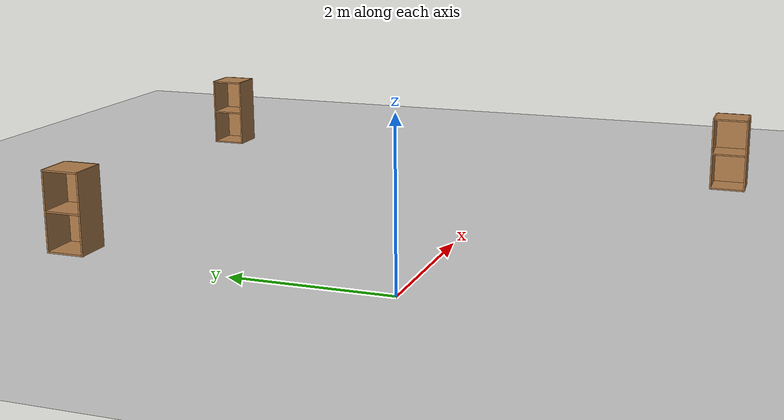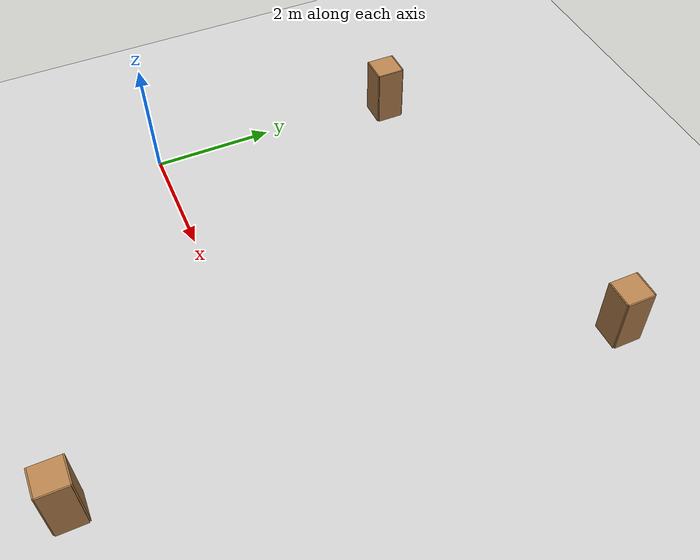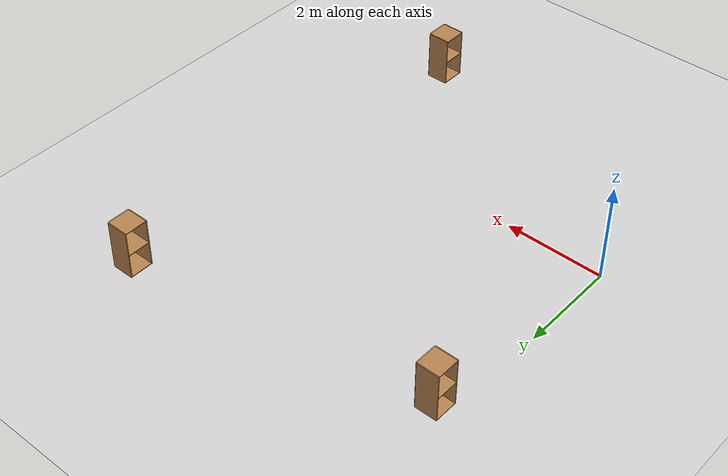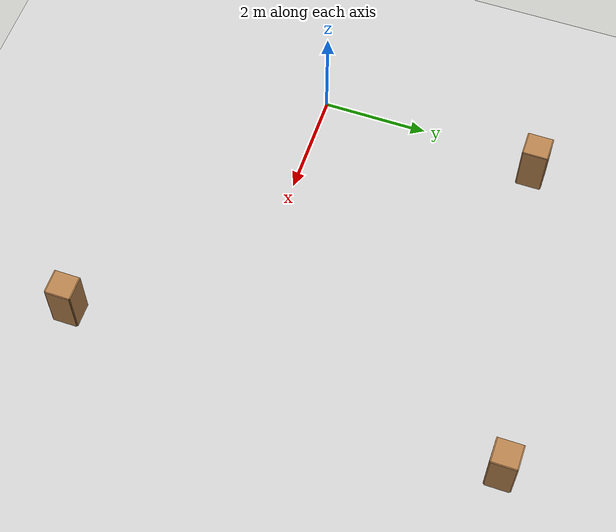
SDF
<sdf version="1.7">
 <world name="default">
  <model name="ground_plane">
   <static>1</static>
   <link name="link">
    <collision name="collision">
     <geometry><plane><normal>0 0 1</normal><size>100 100</size></plane></geometry>
     <surface>
      <contact><collide_bitmask>65535</collide_bitmask></contact>
      <friction><ode><mu>100</mu><mu2>50</mu2></ode></friction>
     </surface>
    </collision>
    <visual name="visual">
     <cast_shadows>0</cast_shadows>
     <geometry><plane><normal>0 0 1</normal><size>100 100</size></plane></geometry>
     <material>
      <script><uri>file://media/materials/scripts/gazebo.material</uri><name>Gazebo/Grey</name></script>
     </material>
    </visual>
   </link>
  </model>
  <model name="cabinet_wood">
   <link name="cabinet_bottom_plate">
    <inertial>
     <pose>0 0 -1 0 -0 0</pose>
     <inertia><ixx>2.05</ixx><ixy>0</ixy><ixz>0</ixz><iyy>2.05</iyy><iyz>0</iyz><izz>2.05</izz></inertia>
     <mass>25</mass>
    </inertial>
    <velocity_decay><linear>0</linear><angular>0</angular></velocity_decay>
    <visual name="cabinet_bottom_plate_geom_cabinet_back_plate_visual">
     <pose>0.235 0 0.51 0 -0 0</pose>
     <geometry><box><size>0.02 0.45 1.02</size></box></geometry>
     <material>
      <script><uri>file://media/materials/scripts/gazebo.material</uri><name>Gazebo/Wood</name></script>
      <shader type="pixel"/>
     </material>
    </visual>
    <visual name="cabinet_bottom_plate_geom_visual">
     <pose>0 0 0.01 0 -0 0</pose>
     <geometry><box><size>0.45 0.45 0.02</size></box></geometry>
     <material>
      <script><uri>file://media/materials/scripts/gazebo.material</uri><name>Gazebo/Wood</name></script>
      <shader type="pixel"/>
     </material>
    </visual>
    <visual name="cabinet_bottom_plate_geom_cabinet_left_plate_visual">
     <pose>0 0.235 0.51 0 -0 0</pose>
     <geometry><box><size>0.45 0.02 1.02</size></box></geometry>
     <material>
      <script><uri>file://media/materials/scripts/gazebo.material</uri><name>Gazebo/Wood</name></script>
      <shader type="pixel"/>
     </material>
    </visual>
    <visual name="cabinet_bottom_plate_geom_cabinet_middle_plate_visual">
     <pose>0 0 0.51 0 -0 0</pose>
     <geometry><box><size>0.45 0.45 0.02</size></box></geometry>
     <material>
      <script><uri>file://media/materials/scripts/gazebo.material</uri><name>Gazebo/Wood</name></script>
      <shader type="pixel"/>
     </material>
    </visual>
    <visual name="cabinet_bottom_plate_geom_cabinet_right_plate_visual">
     <pose>0 -0.235 0.51 0 -0 0</pose>
     <geometry><box><size>0.45 0.02 1.02</size></box></geometry>
     <material>
      <script><uri>file://media/materials/scripts/gazebo.material</uri><name>Gazebo/Wood</name></script>
      <shader type="pixel"/>
     </material>
    </visual>
    <visual name="cabinet_bottom_plate_geom_cabinet_top_plate_visual">
     <pose>0 0 1.01 0 -0 0</pose>
     <geometry><box><size>0.45 0.45 0.02</size></box></geometry>
     <material>
      <script><uri>file://media/materials/scripts/gazebo.material</uri><name>Gazebo/Wood</name></script>
      <shader type="pixel"/>
     </material>
    </visual>
    <collision name="cabinet_bottom_plate_geom">
     <pose>0 0 0.01 0 -0 0</pose>
     <geometry><box><size>0.45 0.45 0.02</size></box></geometry>
     <surface>
      <friction>
       <ode><mu>1</mu><mu2>1</mu2><fdir1>0 0 0</fdir1><slip1>0</slip1><slip2>0</slip2></ode>
       <torsional>
        <coefficient>1</coefficient>
        <patch_radius>0</patch_radius>
        <surface_radius>0</surface_radius>
        <use_patch_radius>1</use_patch_radius>
        <ode><slip>0</slip></ode>
       </torsional>
      </friction>
      <bounce><restitution_coefficient>0</restitution_coefficient><threshold>1e+06</threshold></bounce>
      <contact>
       <collide_without_contact>0</collide_without_contact>
       <collide_without_contact_bitmask>1</collide_without_contact_bitmask>
       <collide_bitmask>1</collide_bitmask>
       <ode>
        <soft_cfm>0</soft_cfm>
        <soft_erp>0.2</soft_erp>
        <kp>1e+13</kp>
        <kd>1</kd>
        <max_vel>0.01</max_vel>
        <min_depth>0</min_depth>
       </ode>
       <bullet>
        <split_impulse>1</split_impulse>
        <split_impulse_penetration_threshold>-0.01</split_impulse_penetration_threshold>
        <soft_cfm>0</soft_cfm>
        <soft_erp>0.2</soft_erp>
        <kp>1e+13</kp>
        <kd>1</kd>
       </bullet>
      </contact>
     </surface>
    </collision>
    <collision name="cabinet_bottom_plate_geom_cabinet_back_plate">
     <pose>0.235 0 0.51 0 -0 0</pose>
     <geometry><box><size>0.02 0.45 1.02</size></box></geometry>
     <surface>
      <friction>
       <ode><mu>1</mu><mu2>1</mu2><fdir1>0 0 0</fdir1><slip1>0</slip1><slip2>0</slip2></ode>
       <torsional>
        <coefficient>1</coefficient>
        <patch_radius>0</patch_radius>
        <surface_radius>0</surface_radius>
        <use_patch_radius>1</use_patch_radius>
        <ode><slip>0</slip></ode>
       </torsional>
      </friction>
      <bounce><restitution_coefficient>0</restitution_coefficient><threshold>1e+06</threshold></bounce>
      <contact>
       <collide_without_contact>0</collide_without_contact>
       <collide_without_contact_bitmask>1</collide_without_contact_bitmask>
       <collide_bitmask>1</collide_bitmask>
       <ode>
        <soft_cfm>0</soft_cfm>
        <soft_erp>0.2</soft_erp>
        <kp>1e+13</kp>
        <kd>1</kd>
        <max_vel>0.01</max_vel>
        <min_depth>0</min_depth>
       </ode>
       <bullet>
        <split_impulse>1</split_impulse>
        <split_impulse_penetration_threshold>-0.01</split_impulse_penetration_threshold>
        <soft_cfm>0</soft_cfm>
        <soft_erp>0.2</soft_erp>
        <kp>1e+13</kp>
        <kd>1</kd>
       </bullet>
      </contact>
     </surface>
    </collision>
    <collision name="cabinet_bottom_plate_geom_cabinet_left_plate">
     <pose>0 0.235 0.51 0 -0 0</pose>
     <geometry><box><size>0.45 0.02 1.02</size></box></geometry>
     <surface>
      <friction>
       <ode><mu>1</mu><mu2>1</mu2><fdir1>0 0 0</fdir1><slip1>0</slip1><slip2>0</slip2></ode>
       <torsional>
        <coefficient>1</coefficient>
        <patch_radius>0</patch_radius>
        <surface_radius>0</surface_radius>
        <use_patch_radius>1</use_patch_radius>
        <ode><slip>0</slip></ode>
       </torsional>
      </friction>
      <bounce><restitution_coefficient>0</restitution_coefficient><threshold>1e+06</threshold></bounce>
      <contact>
       <collide_without_contact>0</collide_without_contact>
       <collide_without_contact_bitmask>1</collide_without_contact_bitmask>
       <collide_bitmask>1</collide_bitmask>
       <ode>
        <soft_cfm>0</soft_cfm>
        <soft_erp>0.2</soft_erp>
        <kp>1e+13</kp>
        <kd>1</kd>
        <max_vel>0.01</max_vel>
        <min_depth>0</min_depth>
       </ode>
       <bullet>
        <split_impulse>1</split_impulse>
        <split_impulse_penetration_threshold>-0.01</split_impulse_penetration_threshold>
        <soft_cfm>0</soft_cfm>
        <soft_erp>0.2</soft_erp>
        <kp>1e+13</kp>
        <kd>1</kd>
       </bullet>
      </contact>
     </surface>
    </collision>
    <collision name="cabinet_bottom_plate_geom_cabinet_right_plate">
     <pose>0 -0.235 0.51 0 -0 0</pose>
     <geometry><box><size>0.45 0.02 1.02</size></box></geometry>
     <surface>
      <friction>
       <ode><mu>1</mu><mu2>1</mu2><fdir1>0 0 0</fdir1><slip1>0</slip1><slip2>0</slip2></ode>
       <torsional>
        <coefficient>1</coefficient>
        <patch_radius>0</patch_radius>
        <surface_radius>0</surface_radius>
        <use_patch_radius>1</use_patch_radius>
        <ode><slip>0</slip></ode>
       </torsional>
      </friction>
      <bounce><restitution_coefficient>0</restitution_coefficient><threshold>1e+06</threshold></bounce>
      <contact>
       <collide_without_contact>0</collide_without_contact>
       <collide_without_contact_bitmask>1</collide_without_contact_bitmask>
       <collide_bitmask>1</collide_bitmask>
       <ode>
        <soft_cfm>0</soft_cfm>
        <soft_erp>0.2</soft_erp>
        <kp>1e+13</kp>
        <kd>1</kd>
        <max_vel>0.01</max_vel>
        <min_depth>0</min_depth>
       </ode>
       <bullet>
        <split_impulse>1</split_impulse>
        <split_impulse_penetration_threshold>-0.01</split_impulse_penetration_threshold>
        <soft_cfm>0</soft_cfm>
        <soft_erp>0.2</soft_erp>
        <kp>1e+13</kp>
        <kd>1</kd>
       </bullet>
      </contact>
     </surface>
    </collision>
    <collision name="cabinet_bottom_plate_geom_cabinet_middle_plate">
     <pose>0 0 0.51 0 -0 0</pose>
     <geometry><box><size>0.45 0.45 0.02</size></box></geometry>
     <surface>
      <friction>
       <ode><mu>1</mu><mu2>1</mu2><fdir1>0 0 0</fdir1><slip1>0</slip1><slip2>0</slip2></ode>
       <torsional>
        <coefficient>1</coefficient>
        <patch_radius>0</patch_radius>
        <surface_radius>0</surface_radius>
        <use_patch_radius>1</use_patch_radius>
        <ode><slip>0</slip></ode>
       </torsional>
      </friction>
      <bounce><restitution_coefficient>0</restitution_coefficient><threshold>1e+06</threshold></bounce>
      <contact>
       <collide_without_contact>0</collide_without_contact>
       <collide_without_contact_bitmask>1</collide_without_contact_bitmask>
       <collide_bitmask>1</collide_bitmask>
       <ode>
        <soft_cfm>0</soft_cfm>
        <soft_erp>0.2</soft_erp>
        <kp>1e+13</kp>
        <kd>1</kd>
        <max_vel>0.01</max_vel>
        <min_depth>0</min_depth>
       </ode>
       <bullet>
        <split_impulse>1</split_impulse>
        <split_impulse_penetration_threshold>-0.01</split_impulse_penetration_threshold>
        <soft_cfm>0</soft_cfm>
        <soft_erp>0.2</soft_erp>
        <kp>1e+13</kp>
        <kd>1</kd>
       </bullet>
      </contact>
     </surface>
    </collision>
    <collision name="cabinet_bottom_plate_geom_cabinet_top_plate">
     <pose>0 0 1.01 0 -0 0</pose>
     <geometry><box><size>0.45 0.45 0.02</size></box></geometry>
     <surface>
      <friction>
       <ode><mu>1</mu><mu2>1</mu2><fdir1>0 0 0</fdir1><slip1>0</slip1><slip2>0</slip2></ode>
       <torsional>
        <coefficient>1</coefficient>
        <patch_radius>0</patch_radius>
        <surface_radius>0</surface_radius>
        <use_patch_radius>1</use_patch_radius>
        <ode><slip>0</slip></ode>
       </torsional>
      </friction>
      <bounce><restitution_coefficient>0</restitution_coefficient><threshold>1e+06</threshold></bounce>
      <contact>
       <collide_without_contact>0</collide_without_contact>
       <collide_without_contact_bitmask>1</collide_without_contact_bitmask>
       <collide_bitmask>1</collide_bitmask>
       <ode>
        <soft_cfm>0</soft_cfm>
        <soft_erp>0.2</soft_erp>
        <kp>1e+13</kp>
        <kd>1</kd>
        <max_vel>0.01</max_vel>
        <min_depth>0</min_depth>
       </ode>
       <bullet>
        <split_impulse>1</split_impulse>
        <split_impulse_penetration_threshold>-0.01</split_impulse_penetration_threshold>
        <soft_cfm>0</soft_cfm>
        <soft_erp>0.2</soft_erp>
        <kp>1e+13</kp>
        <kd>1</kd>
       </bullet>
      </contact>
     </surface>
    </collision>
   </link>
   <static>1</static>
   <pose>0.331644 4.20647 0 0 -0 0</pose>
  </model>
  <model name="cabinet_wood_2">
   <link name="cabinet_bottom_plate">
    <inertial>
     <pose>0 0 -1 0 -0 0</pose>
     <inertia><ixx>2.05</ixx><ixy>0</ixy><ixz>0</ixz><iyy>2.05</iyy><iyz>0</iyz><izz>2.05</izz></inertia>
     <mass>25</mass>
    </inertial>
    <velocity_decay><linear>0</linear><angular>0</angular></velocity_decay>
    <visual name="cabinet_bottom_plate_geom_cabinet_back_plate_visual">
     <pose>0.235 0 0.51 0 -0 0</pose>
     <geometry><box><size>0.02 0.45 1.02</size></box></geometry>
     <material>
      <script><uri>file://media/materials/scripts/gazebo.material</uri><name>Gazebo/Wood</name></script>
      <shader type="pixel"/>
     </material>
    </visual>
    <visual name="cabinet_bottom_plate_geom_visual">
     <pose>0 0 0.01 0 -0 0</pose>
     <geometry><box><size>0.45 0.45 0.02</size></box></geometry>
     <material>
      <script><uri>file://media/materials/scripts/gazebo.material</uri><name>Gazebo/Wood</name></script>
      <shader type="pixel"/>
     </material>
    </visual>
    <visual name="cabinet_bottom_plate_geom_cabinet_left_plate_visual">
     <pose>0 0.235 0.51 0 -0 0</pose>
     <geometry><box><size>0.45 0.02 1.02</size></box></geometry>
     <material>
      <script><uri>file://media/materials/scripts/gazebo.material</uri><name>Gazebo/Wood</name></script>
      <shader type="pixel"/>
     </material>
    </visual>
    <visual name="cabinet_bottom_plate_geom_cabinet_middle_plate_visual">
     <pose>0 0 0.51 0 -0 0</pose>
     <geometry><box><size>0.45 0.45 0.02</size></box></geometry>
     <material>
      <script><uri>file://media/materials/scripts/gazebo.material</uri><name>Gazebo/Wood</name></script>
      <shader type="pixel"/>
     </material>
    </visual>
    <visual name="cabinet_bottom_plate_geom_cabinet_right_plate_visual">
     <pose>0 -0.235 0.51 0 -0 0</pose>
     <geometry><box><size>0.45 0.02 1.02</size></box></geometry>
     <material>
      <script><uri>file://media/materials/scripts/gazebo.material</uri><name>Gazebo/Wood</name></script>
      <shader type="pixel"/>
     </material>
    </visual>
    <visual name="cabinet_bottom_plate_geom_cabinet_top_plate_visual">
     <pose>0 0 1.01 0 -0 0</pose>
     <geometry><box><size>0.45 0.45 0.02</size></box></geometry>
     <material>
      <script><uri>file://media/materials/scripts/gazebo.material</uri><name>Gazebo/Wood</name></script>
      <shader type="pixel"/>
     </material>
    </visual>
    <collision name="cabinet_bottom_plate_geom">
     <pose>0 0 0.01 0 -0 0</pose>
     <geometry><box><size>0.45 0.45 0.02</size></box></geometry>
     <surface>
      <friction>
       <ode><mu>1</mu><mu2>1</mu2><fdir1>0 0 0</fdir1><slip1>0</slip1><slip2>0</slip2></ode>
       <torsional>
        <coefficient>1</coefficient>
        <patch_radius>0</patch_radius>
        <surface_radius>0</surface_radius>
        <use_patch_radius>1</use_patch_radius>
        <ode><slip>0</slip></ode>
       </torsional>
      </friction>
      <bounce><restitution_coefficient>0</restitution_coefficient><threshold>1e+06</threshold></bounce>
      <contact>
       <collide_without_contact>0</collide_without_contact>
       <collide_without_contact_bitmask>1</collide_without_contact_bitmask>
       <collide_bitmask>1</collide_bitmask>
       <ode>
        <soft_cfm>0</soft_cfm>
        <soft_erp>0.2</soft_erp>
        <kp>1e+13</kp>
        <kd>1</kd>
        <max_vel>0.01</max_vel>
        <min_depth>0</min_depth>
       </ode>
       <bullet>
        <split_impulse>1</split_impulse>
        <split_impulse_penetration_threshold>-0.01</split_impulse_penetration_threshold>
        <soft_cfm>0</soft_cfm>
        <soft_erp>0.2</soft_erp>
        <kp>1e+13</kp>
        <kd>1</kd>
       </bullet>
      </contact>
     </surface>
    </collision>
    <collision name="cabinet_bottom_plate_geom_cabinet_back_plate">
     <pose>0.235 0 0.51 0 -0 0</pose>
     <geometry><box><size>0.02 0.45 1.02</size></box></geometry>
     <surface>
      <friction>
       <ode><mu>1</mu><mu2>1</mu2><fdir1>0 0 0</fdir1><slip1>0</slip1><slip2>0</slip2></ode>
       <torsional>
        <coefficient>1</coefficient>
        <patch_radius>0</patch_radius>
        <surface_radius>0</surface_radius>
        <use_patch_radius>1</use_patch_radius>
        <ode><slip>0</slip></ode>
       </torsional>
      </friction>
      <bounce><restitution_coefficient>0</restitution_coefficient><threshold>1e+06</threshold></bounce>
      <contact>
       <collide_without_contact>0</collide_without_contact>
       <collide_without_contact_bitmask>1</collide_without_contact_bitmask>
       <collide_bitmask>1</collide_bitmask>
       <ode>
        <soft_cfm>0</soft_cfm>
        <soft_erp>0.2</soft_erp>
        <kp>1e+13</kp>
        <kd>1</kd>
        <max_vel>0.01</max_vel>
        <min_depth>0</min_depth>
       </ode>
       <bullet>
        <split_impulse>1</split_impulse>
        <split_impulse_penetration_threshold>-0.01</split_impulse_penetration_threshold>
        <soft_cfm>0</soft_cfm>
        <soft_erp>0.2</soft_erp>
        <kp>1e+13</kp>
        <kd>1</kd>
       </bullet>
      </contact>
     </surface>
    </collision>
    <collision name="cabinet_bottom_plate_geom_cabinet_left_plate">
     <pose>0 0.235 0.51 0 -0 0</pose>
     <geometry><box><size>0.45 0.02 1.02</size></box></geometry>
     <surface>
      <friction>
       <ode><mu>1</mu><mu2>1</mu2><fdir1>0 0 0</fdir1><slip1>0</slip1><slip2>0</slip2></ode>
       <torsional>
        <coefficient>1</coefficient>
        <patch_radius>0</patch_radius>
        <surface_radius>0</surface_radius>
        <use_patch_radius>1</use_patch_radius>
        <ode><slip>0</slip></ode>
       </torsional>
      </friction>
      <bounce><restitution_coefficient>0</restitution_coefficient><threshold>1e+06</threshold></bounce>
      <contact>
       <collide_without_contact>0</collide_without_contact>
       <collide_without_contact_bitmask>1</collide_without_contact_bitmask>
       <collide_bitmask>1</collide_bitmask>
       <ode>
        <soft_cfm>0</soft_cfm>
        <soft_erp>0.2</soft_erp>
        <kp>1e+13</kp>
        <kd>1</kd>
        <max_vel>0.01</max_vel>
        <min_depth>0</min_depth>
       </ode>
       <bullet>
        <split_impulse>1</split_impulse>
        <split_impulse_penetration_threshold>-0.01</split_impulse_penetration_threshold>
        <soft_cfm>0</soft_cfm>
        <soft_erp>0.2</soft_erp>
        <kp>1e+13</kp>
        <kd>1</kd>
       </bullet>
      </contact>
     </surface>
    </collision>
    <collision name="cabinet_bottom_plate_geom_cabinet_right_plate">
     <pose>0 -0.235 0.51 0 -0 0</pose>
     <geometry><box><size>0.45 0.02 1.02</size></box></geometry>
     <surface>
      <friction>
       <ode><mu>1</mu><mu2>1</mu2><fdir1>0 0 0</fdir1><slip1>0</slip1><slip2>0</slip2></ode>
       <torsional>
        <coefficient>1</coefficient>
        <patch_radius>0</patch_radius>
        <surface_radius>0</surface_radius>
        <use_patch_radius>1</use_patch_radius>
        <ode><slip>0</slip></ode>
       </torsional>
      </friction>
      <bounce><restitution_coefficient>0</restitution_coefficient><threshold>1e+06</threshold></bounce>
      <contact>
       <collide_without_contact>0</collide_without_contact>
       <collide_without_contact_bitmask>1</collide_without_contact_bitmask>
       <collide_bitmask>1</collide_bitmask>
       <ode>
        <soft_cfm>0</soft_cfm>
        <soft_erp>0.2</soft_erp>
        <kp>1e+13</kp>
        <kd>1</kd>
        <max_vel>0.01</max_vel>
        <min_depth>0</min_depth>
       </ode>
       <bullet>
        <split_impulse>1</split_impulse>
        <split_impulse_penetration_threshold>-0.01</split_impulse_penetration_threshold>
        <soft_cfm>0</soft_cfm>
        <soft_erp>0.2</soft_erp>
        <kp>1e+13</kp>
        <kd>1</kd>
       </bullet>
      </contact>
     </surface>
    </collision>
    <collision name="cabinet_bottom_plate_geom_cabinet_middle_plate">
     <pose>0 0 0.51 0 -0 0</pose>
     <geometry><box><size>0.45 0.45 0.02</size></box></geometry>
     <surface>
      <friction>
       <ode><mu>1</mu><mu2>1</mu2><fdir1>0 0 0</fdir1><slip1>0</slip1><slip2>0</slip2></ode>
       <torsional>
        <coefficient>1</coefficient>
        <patch_radius>0</patch_radius>
        <surface_radius>0</surface_radius>
        <use_patch_radius>1</use_patch_radius>
        <ode><slip>0</slip></ode>
       </torsional>
      </friction>
      <bounce><restitution_coefficient>0</restitution_coefficient><threshold>1e+06</threshold></bounce>
      <contact>
       <collide_without_contact>0</collide_without_contact>
       <collide_without_contact_bitmask>1</collide_without_contact_bitmask>
       <collide_bitmask>1</collide_bitmask>
       <ode>
        <soft_cfm>0</soft_cfm>
        <soft_erp>0.2</soft_erp>
        <kp>1e+13</kp>
        <kd>1</kd>
        <max_vel>0.01</max_vel>
        <min_depth>0</min_depth>
       </ode>
       <bullet>
        <split_impulse>1</split_impulse>
        <split_impulse_penetration_threshold>-0.01</split_impulse_penetration_threshold>
        <soft_cfm>0</soft_cfm>
        <soft_erp>0.2</soft_erp>
        <kp>1e+13</kp>
        <kd>1</kd>
       </bullet>
      </contact>
     </surface>
    </collision>
    <collision name="cabinet_bottom_plate_geom_cabinet_top_plate">
     <pose>0 0 1.01 0 -0 0</pose>
     <geometry><box><size>0.45 0.45 0.02</size></box></geometry>
     <surface>
      <friction>
       <ode><mu>1</mu><mu2>1</mu2><fdir1>0 0 0</fdir1><slip1>0</slip1><slip2>0</slip2></ode>
       <torsional>
        <coefficient>1</coefficient>
        <patch_radius>0</patch_radius>
        <surface_radius>0</surface_radius>
        <use_patch_radius>1</use_patch_radius>
        <ode><slip>0</slip></ode>
       </torsional>
      </friction>
      <bounce><restitution_coefficient>0</restitution_coefficient><threshold>1e+06</threshold></bounce>
      <contact>
       <collide_without_contact>0</collide_without_contact>
       <collide_without_contact_bitmask>1</collide_without_contact_bitmask>
       <collide_bitmask>1</collide_bitmask>
       <ode>
        <soft_cfm>0</soft_cfm>
        <soft_erp>0.2</soft_erp>
        <kp>1e+13</kp>
        <kd>1</kd>
        <max_vel>0.01</max_vel>
        <min_depth>0</min_depth>
       </ode>
       <bullet>
        <split_impulse>1</split_impulse>
        <split_impulse_penetration_threshold>-0.01</split_impulse_penetration_threshold>
        <soft_cfm>0</soft_cfm>
        <soft_erp>0.2</soft_erp>
        <kp>1e+13</kp>
        <kd>1</kd>
       </bullet>
      </contact>
     </surface>
    </collision>
   </link>
   <static>1</static>
   <pose>6.36011 5.21581 0 0 -0 0</pose>
  </model>
  <model name="cabinet_wood_3">
   <link name="cabinet_bottom_plate">
    <inertial>
     <pose>0 0 -1 0 -0 0</pose>
     <inertia><ixx>2.05</ixx><ixy>0</ixy><ixz>0</ixz><iyy>2.05</iyy><iyz>0</iyz><izz>2.05</izz></inertia>
     <mass>25</mass>
    </inertial>
    <velocity_decay><linear>0</linear><angular>0</angular></velocity_decay>
    <visual name="cabinet_bottom_plate_geom_cabinet_back_plate_visual">
     <pose>0.235 0 0.51 0 -0 0</pose>
     <geometry><box><size>0.02 0.45 1.02</size></box></geometry>
     <material>
      <script><uri>file://media/materials/scripts/gazebo.material</uri><name>Gazebo/Wood</name></script>
      <shader type="pixel"/>
     </material>
    </visual>
    <visual name="cabinet_bottom_plate_geom_visual">
     <pose>0 0 0.01 0 -0 0</pose>
     <geometry><box><size>0.45 0.45 0.02</size></box></geometry>
     <material>
      <script><uri>file://media/materials/scripts/gazebo.material</uri><name>Gazebo/Wood</name></script>
      <shader type="pixel"/>
     </material>
    </visual>
    <visual name="cabinet_bottom_plate_geom_cabinet_left_plate_visual">
     <pose>0 0.235 0.51 0 -0 0</pose>
     <geometry><box><size>0.45 0.02 1.02</size></box></geometry>
     <material>
      <script><uri>file://media/materials/scripts/gazebo.material</uri><name>Gazebo/Wood</name></script>
      <shader type="pixel"/>
     </material>
    </visual>
    <visual name="cabinet_bottom_plate_geom_cabinet_middle_plate_visual">
     <pose>0 0 0.51 0 -0 0</pose>
     <geometry><box><size>0.45 0.45 0.02</size></box></geometry>
     <material>
      <script><uri>file://media/materials/scripts/gazebo.material</uri><name>Gazebo/Wood</name></script>
      <shader type="pixel"/>
     </material>
    </visual>
    <visual name="cabinet_bottom_plate_geom_cabinet_right_plate_visual">
     <pose>0 -0.235 0.51 0 -0 0</pose>
     <geometry><box><size>0.45 0.02 1.02</size></box></geometry>
     <material>
      <script><uri>file://media/materials/scripts/gazebo.material</uri><name>Gazebo/Wood</name></script>
      <shader type="pixel"/>
     </material>
    </visual>
    <visual name="cabinet_bottom_plate_geom_cabinet_top_plate_visual">
     <pose>0 0 1.01 0 -0 0</pose>
     <geometry><box><size>0.45 0.45 0.02</size></box></geometry>
     <material>
      <script><uri>file://media/materials/scripts/gazebo.material</uri><name>Gazebo/Wood</name></script>
      <shader type="pixel"/>
     </material>
    </visual>
    <collision name="cabinet_bottom_plate_geom">
     <pose>0 0 0.01 0 -0 0</pose>
     <geometry><box><size>0.45 0.45 0.02</size></box></geometry>
     <surface>
      <friction>
       <ode><mu>1</mu><mu2>1</mu2><fdir1>0 0 0</fdir1><slip1>0</slip1><slip2>0</slip2></ode>
       <torsional>
        <coefficient>1</coefficient>
        <patch_radius>0</patch_radius>
        <surface_radius>0</surface_radius>
        <use_patch_radius>1</use_patch_radius>
        <ode><slip>0</slip></ode>
       </torsional>
      </friction>
      <bounce><restitution_coefficient>0</restitution_coefficient><threshold>1e+06</threshold></bounce>
      <contact>
       <collide_without_contact>0</collide_without_contact>
       <collide_without_contact_bitmask>1</collide_without_contact_bitmask>
       <collide_bitmask>1</collide_bitmask>
       <ode>
        <soft_cfm>0</soft_cfm>
        <soft_erp>0.2</soft_erp>
        <kp>1e+13</kp>
        <kd>1</kd>
        <max_vel>0.01</max_vel>
        <min_depth>0</min_depth>
       </ode>
       <bullet>
        <split_impulse>1</split_impulse>
        <split_impulse_penetration_threshold>-0.01</split_impulse_penetration_threshold>
        <soft_cfm>0</soft_cfm>
        <soft_erp>0.2</soft_erp>
        <kp>1e+13</kp>
        <kd>1</kd>
       </bullet>
      </contact>
     </surface>
    </collision>
    <collision name="cabinet_bottom_plate_geom_cabinet_back_plate">
     <pose>0.235 0 0.51 0 -0 0</pose>
     <geometry><box><size>0.02 0.45 1.02</size></box></geometry>
     <surface>
      <friction>
       <ode><mu>1</mu><mu2>1</mu2><fdir1>0 0 0</fdir1><slip1>0</slip1><slip2>0</slip2></ode>
       <torsional>
        <coefficient>1</coefficient>
        <patch_radius>0</patch_radius>
        <surface_radius>0</surface_radius>
        <use_patch_radius>1</use_patch_radius>
        <ode><slip>0</slip></ode>
       </torsional>
      </friction>
      <bounce><restitution_coefficient>0</restitution_coefficient><threshold>1e+06</threshold></bounce>
      <contact>
       <collide_without_contact>0</collide_without_contact>
       <collide_without_contact_bitmask>1</collide_without_contact_bitmask>
       <collide_bitmask>1</collide_bitmask>
       <ode>
        <soft_cfm>0</soft_cfm>
        <soft_erp>0.2</soft_erp>
        <kp>1e+13</kp>
        <kd>1</kd>
        <max_vel>0.01</max_vel>
        <min_depth>0</min_depth>
       </ode>
       <bullet>
        <split_impulse>1</split_impulse>
        <split_impulse_penetration_threshold>-0.01</split_impulse_penetration_threshold>
        <soft_cfm>0</soft_cfm>
        <soft_erp>0.2</soft_erp>
        <kp>1e+13</kp>
        <kd>1</kd>
       </bullet>
      </contact>
     </surface>
    </collision>
    <collision name="cabinet_bottom_plate_geom_cabinet_left_plate">
     <pose>0 0.235 0.51 0 -0 0</pose>
     <geometry><box><size>0.45 0.02 1.02</size></box></geometry>
     <surface>
      <friction>
       <ode><mu>1</mu><mu2>1</mu2><fdir1>0 0 0</fdir1><slip1>0</slip1><slip2>0</slip2></ode>
       <torsional>
        <coefficient>1</coefficient>
        <patch_radius>0</patch_radius>
        <surface_radius>0</surface_radius>
        <use_patch_radius>1</use_patch_radius>
        <ode><slip>0</slip></ode>
       </torsional>
      </friction>
      <bounce><restitution_coefficient>0</restitution_coefficient><threshold>1e+06</threshold></bounce>
      <contact>
       <collide_without_contact>0</collide_without_contact>
       <collide_without_contact_bitmask>1</collide_without_contact_bitmask>
       <collide_bitmask>1</collide_bitmask>
       <ode>
        <soft_cfm>0</soft_cfm>
        <soft_erp>0.2</soft_erp>
        <kp>1e+13</kp>
        <kd>1</kd>
        <max_vel>0.01</max_vel>
        <min_depth>0</min_depth>
       </ode>
       <bullet>
        <split_impulse>1</split_impulse>
        <split_impulse_penetration_threshold>-0.01</split_impulse_penetration_threshold>
        <soft_cfm>0</soft_cfm>
        <soft_erp>0.2</soft_erp>
        <kp>1e+13</kp>
        <kd>1</kd>
       </bullet>
      </contact>
     </surface>
    </collision>
    <collision name="cabinet_bottom_plate_geom_cabinet_right_plate">
     <pose>0 -0.235 0.51 0 -0 0</pose>
     <geometry><box><size>0.45 0.02 1.02</size></box></geometry>
     <surface>
      <friction>
       <ode><mu>1</mu><mu2>1</mu2><fdir1>0 0 0</fdir1><slip1>0</slip1><slip2>0</slip2></ode>
       <torsional>
        <coefficient>1</coefficient>
        <patch_radius>0</patch_radius>
        <surface_radius>0</surface_radius>
        <use_patch_radius>1</use_patch_radius>
        <ode><slip>0</slip></ode>
       </torsional>
      </friction>
      <bounce><restitution_coefficient>0</restitution_coefficient><threshold>1e+06</threshold></bounce>
      <contact>
       <collide_without_contact>0</collide_without_contact>
       <collide_without_contact_bitmask>1</collide_without_contact_bitmask>
       <collide_bitmask>1</collide_bitmask>
       <ode>
        <soft_cfm>0</soft_cfm>
        <soft_erp>0.2</soft_erp>
        <kp>1e+13</kp>
        <kd>1</kd>
        <max_vel>0.01</max_vel>
        <min_depth>0</min_depth>
       </ode>
       <bullet>
        <split_impulse>1</split_impulse>
        <split_impulse_penetration_threshold>-0.01</split_impulse_penetration_threshold>
        <soft_cfm>0</soft_cfm>
        <soft_erp>0.2</soft_erp>
        <kp>1e+13</kp>
        <kd>1</kd>
       </bullet>
      </contact>
     </surface>
    </collision>
    <collision name="cabinet_bottom_plate_geom_cabinet_middle_plate">
     <pose>0 0 0.51 0 -0 0</pose>
     <geometry><box><size>0.45 0.45 0.02</size></box></geometry>
     <surface>
      <friction>
       <ode><mu>1</mu><mu2>1</mu2><fdir1>0 0 0</fdir1><slip1>0</slip1><slip2>0</slip2></ode>
       <torsional>
        <coefficient>1</coefficient>
        <patch_radius>0</patch_radius>
        <surface_radius>0</surface_radius>
        <use_patch_radius>1</use_patch_radius>
        <ode><slip>0</slip></ode>
       </torsional>
      </friction>
      <bounce><restitution_coefficient>0</restitution_coefficient><threshold>1e+06</threshold></bounce>
      <contact>
       <collide_without_contact>0</collide_without_contact>
       <collide_without_contact_bitmask>1</collide_without_contact_bitmask>
       <collide_bitmask>1</collide_bitmask>
       <ode>
        <soft_cfm>0</soft_cfm>
        <soft_erp>0.2</soft_erp>
        <kp>1e+13</kp>
        <kd>1</kd>
        <max_vel>0.01</max_vel>
        <min_depth>0</min_depth>
       </ode>
       <bullet>
        <split_impulse>1</split_impulse>
        <split_impulse_penetration_threshold>-0.01</split_impulse_penetration_threshold>
        <soft_cfm>0</soft_cfm>
        <soft_erp>0.2</soft_erp>
        <kp>1e+13</kp>
        <kd>1</kd>
       </bullet>
      </contact>
     </surface>
    </collision>
    <collision name="cabinet_bottom_plate_geom_cabinet_top_plate">
     <pose>0 0 1.01 0 -0 0</pose>
     <geometry><box><size>0.45 0.45 0.02</size></box></geometry>
     <surface>
      <friction>
       <ode><mu>1</mu><mu2>1</mu2><fdir1>0 0 0</fdir1><slip1>0</slip1><slip2>0</slip2></ode>
       <torsional>
        <coefficient>1</coefficient>
        <patch_radius>0</patch_radius>
        <surface_radius>0</surface_radius>
        <use_patch_radius>1</use_patch_radius>
        <ode><slip>0</slip></ode>
       </torsional>
      </friction>
      <bounce><restitution_coefficient>0</restitution_coefficient><threshold>1e+06</threshold></bounce>
      <contact>
       <collide_without_contact>0</collide_without_contact>
       <collide_without_contact_bitmask>1</collide_without_contact_bitmask>
       <collide_bitmask>1</collide_bitmask>
       <ode>
        <soft_cfm>0</soft_cfm>
        <soft_erp>0.2</soft_erp>
        <kp>1e+13</kp>
        <kd>1</kd>
        <max_vel>0.01</max_vel>
        <min_depth>0</min_depth>
       </ode>
       <bullet>
        <split_impulse>1</split_impulse>
        <split_impulse_penetration_threshold>-0.01</split_impulse_penetration_threshold>
        <soft_cfm>0</soft_cfm>
        <soft_erp>0.2</soft_erp>
        <kp>1e+13</kp>
        <kd>1</kd>
       </bullet>
      </contact>
     </surface>
    </collision>
   </link>
   <static>1</static>
   <pose>5.83338 -2.92178 0 0 -0 0</pose>
  </model>
 </world>
</sdf>
